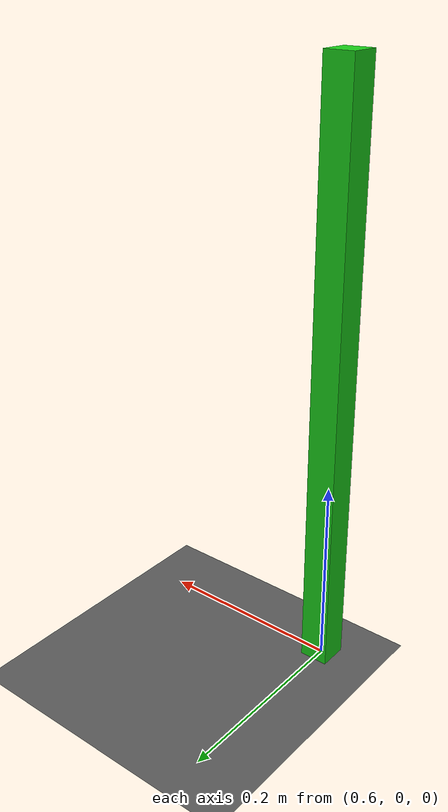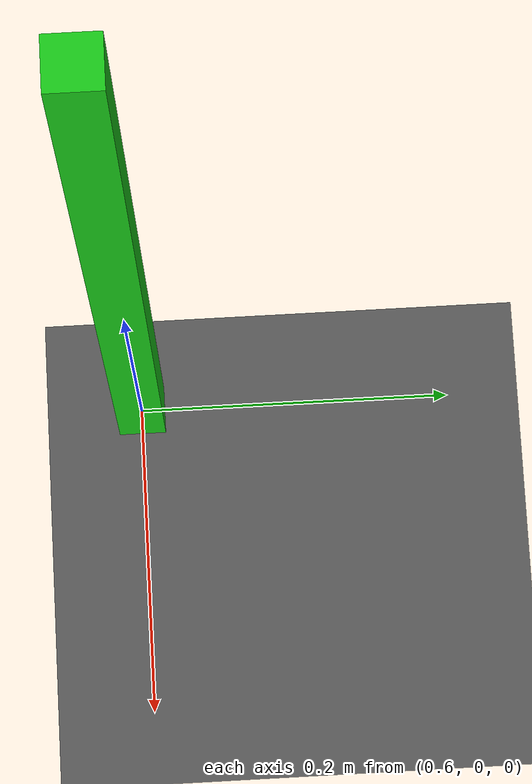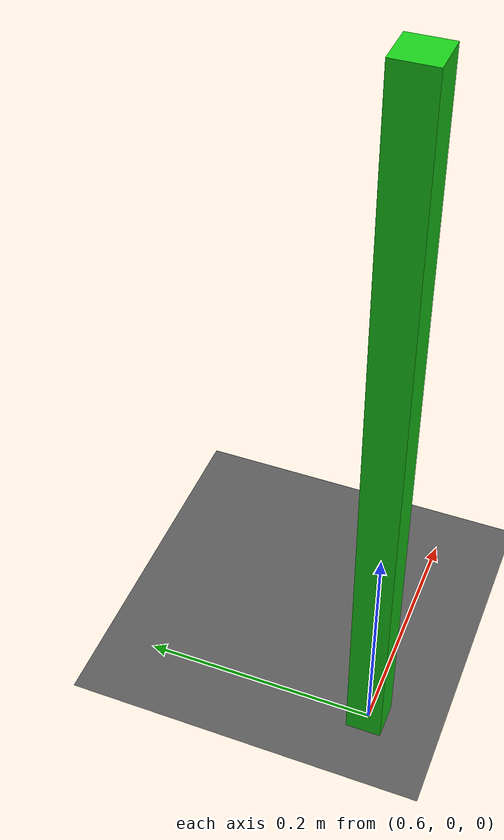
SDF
<?xml version="1.0" ?>
<sdf version="1.8">
  <world name="IRB120_green_cube_world">
    <gravity>0 0 -9.81</gravity>

    <light name="sun" type="directional">
      <cast_shadows>true</cast_shadows>
      <pose>0 0 10 0 0 0</pose>
      <diffuse>0.8 0.8 0.8 1.0</diffuse>
      <specular>0.2 0.2 0.2 1.0</specular>
      <attenuation>
        <range>1000</range>
        <constant>0.9</constant>
        <linear>0.01</linear>
        <quadratic>0.001</quadratic>
      </attenuation>
      <direction>-0.5 0.1 -0.9</direction>
    </light>

    <model name="ground_plane">
      <static>true</static>
      <link name="link">
        <collision name="collision">
          <geometry>
            <plane>
              <normal>0 0 1</normal>
              <size>50 50</size>
            </plane>
          </geometry>
        </collision>
        <visual name="visual">
          <geometry>
            <plane>
              <normal>0 0 1</normal>
              <size>50 50</size>
            </plane>
          </geometry>
          <material>
            <ambient>0.3 0.3 0.3 1.0</ambient>
            <diffuse>0.35 0.35 0.35 1.0</diffuse>
            <specular>0.02 0.02 0.02 1.0</specular>
          </material>
        </visual>
      </link>
    </model>

    <model name="green_cube">
      <static>false</static>
      <pose>0.6 0.0 0.3 0 0 0</pose>
      <link name="link">
        <inertial>
          <mass>0.10</mass>
          <inertia>
            <ixx>0.0000417</ixx>
            <iyy>0.0000417</iyy>
            <izz>0.0000417</izz>
            <ixy>0.0</ixy>
            <ixz>0.0</ixz>
            <iyz>0.0</iyz>
          </inertia>
        </inertial>
        <collision name="collision">
          <geometry>
            <box>
              <size>0.03 0.03 0.6</size>
            </box>
          </geometry>
        </collision>
        <visual name="visual">
          <geometry>
            <box>
              <size>0.03 0.03 0.6</size>
            </box>
          </geometry>
          <material>
            <ambient>0.05 0.6 0.05 1.0</ambient>
            <diffuse>0.1 0.8 0.1 1.0</diffuse>
            <specular>0.03 0.03 0.6 1.0</specular>
          </material>
        </visual>
      </link>
    </model>

    <plugin filename="ignition-gazebo-physics-system"
      name="gz::sim::systems::Physics"/>

    <plugin filename="ignition-gazebo-user-commands-system"
      name="gz::sim::systems::UserCommands"/>

    <plugin filename="ignition-gazebo-scene-broadcaster-system"
      name="gz::sim::systems::SceneBroadcaster"/>

    <plugin filename="ignition-gazebo-sensors-system"
      name="gz::sim::systems::Sensors">
      <render_engine>ogre2</render_engine>
    </plugin>

  </world>
</sdf>
